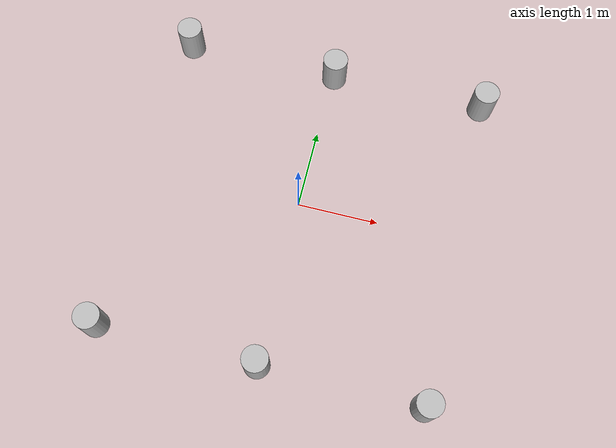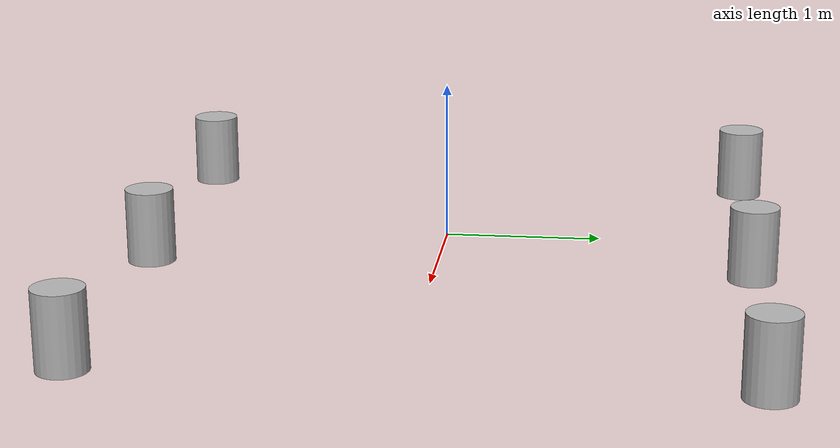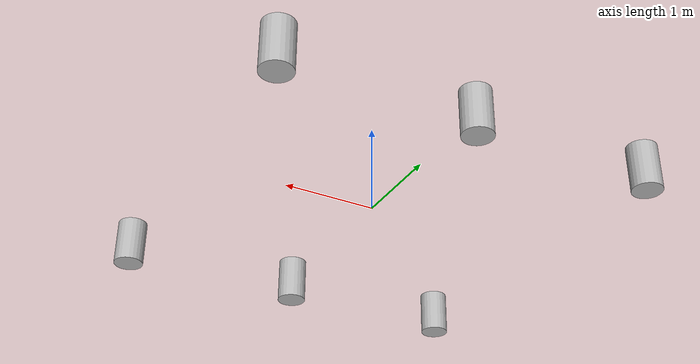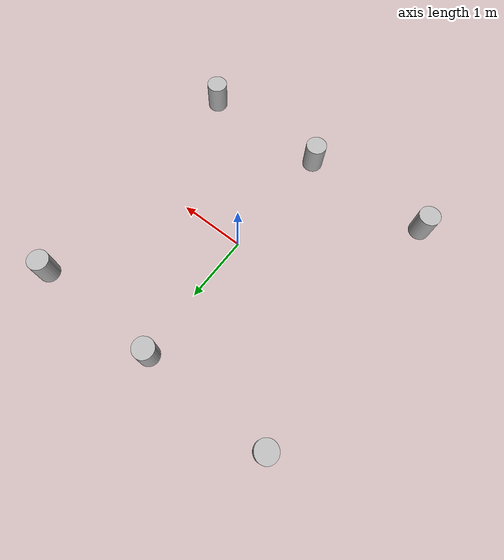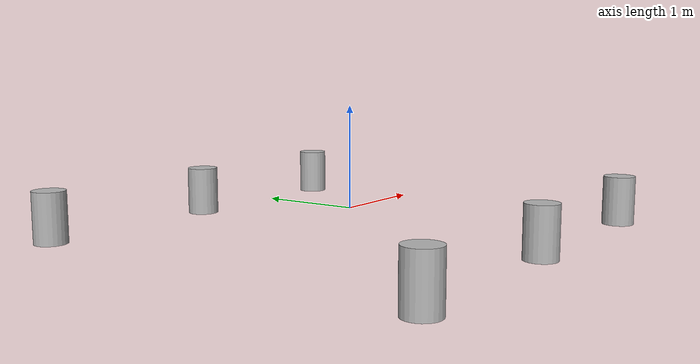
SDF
<?xml version="1.0"?>
<sdf version="1.4">
    <!-- Obstáculos dinámicos -->
    <model name="turtlebot3_drl_obstacle1">
      <include>
        <pose>2 2 0 0 0 0</pose>
        <uri>model://turtlebot3_drl_world/obstacle1</uri>
      </include>
      <plugin name="obstaclelarge1" filename="libobstacle7.so"/>
    </model>

    <model name="turtlebot3_drl_obstacle2">
      <include>
        <pose>-2 -2 0 0 0 0</pose>
        <uri>model://turtlebot3_drl_world/obstacle2</uri>
      </include>
      <plugin name="obstaclelarge2" filename="libobstacle8.so"/>
    </model>

    <model name="turtlebot3_drl_obstacle3">
      <include>
        <pose>2 -2 0 0 0 0</pose>
        <uri>model://turtlebot3_drl_world/obstacle3</uri>
      </include>
      <plugin name="obstaclelarge3" filename="libobstacle9.so"/>
    </model>

    <model name="turtlebot3_drl_obstacle4">
      <include>
        <pose>-2 2 0 0 0 0</pose>
        <uri>model://turtlebot3_drl_world/obstacle4</uri>
      </include>
      <plugin name="obstaclelarge4" filename="libobstacle10.so"/>
    </model>

    <model name="turtlebot3_drl_obstacle5">
      <include>
        <pose>0 -2 0 0 0 0</pose>
        <uri>model://turtlebot3_drl_world/obstacle5</uri>
      </include>
      <plugin name="obstaclelarge5" filename="libobstacle11.so"/>
    </model>

    <model name="turtlebot3_drl_obstacle6">
      <include>
        <pose>0 2 0 0 0 0</pose>
        <uri>model://turtlebot3_drl_world/obstacle6</uri>
      </include>
      <plugin name="obstaclelarge6" filename="libobstacle12.so"/>
    </model>
</sdf>

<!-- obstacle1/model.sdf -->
<sdf version='1.6'>
    <model name="obstacle1">
  <plugin name="obstacle_mover" filename="/home/amit_kumar/drl_nav_ws/src/turtlebot3_drlnav/src/turtlebot3_simulations/turtlebot3_gazebo/models/turtlebot3_drl_world/obstacle_plugin/lib/libobstacles.so"/>
      <link name="link_obstacle1">
        <collision name="collision">
          <geometry>
            <cylinder>
              <radius>0.16</radius>
              <length>0.50</length>
            </cylinder>
          </geometry>
        </collision>

        <visual name="visual">
          <geometry>
            <cylinder>
              <radius>0.16</radius>
              <length>0.50</length>
            </cylinder>
          </geometry>
        </visual>
      </link>
      <plugin name="p3d_base_controller_obstacle1" filename="libgazebo_ros_p3d.so">
        <ros>
          <namespace>/obstacle</namespace>
          <remapping>odom:=odom</remapping>
        </ros>
        <always_on>true</always_on>
        <update_rate>50.0</update_rate>
        <body_name>link_obstacle1</body_name>
        <topic_name>odom_obs</topic_name>
        <gaussian_noise>0.0</gaussian_noise>
        <frame_name>world</frame_name>
        <xyz_offset>0 0 0</xyz_offset>
        <rpy_offset>0 0 0</rpy_offset>
      </plugin>
    </model>
</sdf>

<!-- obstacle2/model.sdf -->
<sdf version='1.6'>
    <model name="obstacle2">
  <plugin name="obstacle_mover" filename="/home/amit_kumar/drl_nav_ws/src/turtlebot3_drlnav/src/turtlebot3_simulations/turtlebot3_gazebo/models/turtlebot3_drl_world/obstacle_plugin/lib/libobstacles.so"/>
      <link name="link_obstacle2">
        <collision name="collision">
          <geometry>
            <cylinder>
              <radius>0.16</radius>
              <length>0.50</length>
            </cylinder>
          </geometry>
        </collision>

        <visual name="visual">
          <geometry>
            <cylinder>
              <radius>0.16</radius>
              <length>0.50</length>
            </cylinder>
          </geometry>
        </visual>
      </link>
      <plugin name="p3d_base_controller_obstacle2" filename="libgazebo_ros_p3d.so">
        <ros>
          <namespace>/obstacle</namespace>
          <remapping>odom:=odom</remapping>
        </ros>
        <always_on>true</always_on>
        <update_rate>50.0</update_rate>
        <body_name>link_obstacle2</body_name>
        <topic_name>odom_obs</topic_name>
        <gaussian_noise>0.0</gaussian_noise>
        <frame_name>world</frame_name>
        <xyz_offset>0 0 0</xyz_offset>
        <rpy_offset>0 0 0</rpy_offset>
      </plugin>
    </model>
</sdf>

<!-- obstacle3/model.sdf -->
<sdf version='1.6'>
    <model name="obstacle3">
  <plugin name="obstacle_mover" filename="/home/amit_kumar/drl_nav_ws/src/turtlebot3_drlnav/src/turtlebot3_simulations/turtlebot3_gazebo/models/turtlebot3_drl_world/obstacle_plugin/lib/libobstacles.so"/>
      <link name="link_obstacle3">
        <collision name="collision">
          <geometry>
            <cylinder>
              <radius>0.16</radius>
              <length>0.50</length>
            </cylinder>
          </geometry>
        </collision>

        <visual name="visual">
          <geometry>
            <cylinder>
              <radius>0.16</radius>
              <length>0.50</length>
            </cylinder>
          </geometry>
        </visual>
      </link>
      <plugin name="p3d_base_controller_obstacle3" filename="libgazebo_ros_p3d.so">
        <ros>
          <namespace>/obstacle</namespace>
          <remapping>odom:=odom</remapping>
        </ros>
        <always_on>true</always_on>
        <update_rate>50.0</update_rate>
        <body_name>link_obstacle3</body_name>
        <topic_name>odom_obs</topic_name>
        <gaussian_noise>0.0</gaussian_noise>
        <frame_name>world</frame_name>
        <xyz_offset>0 0 0</xyz_offset>
        <rpy_offset>0 0 0</rpy_offset>
      </plugin>
    </model>
</sdf>

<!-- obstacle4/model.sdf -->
<sdf version='1.6'>
    <model name="obstacle4">
  <plugin name="obstacle_mover" filename="/home/amit_kumar/drl_nav_ws/src/turtlebot3_drlnav/src/turtlebot3_simulations/turtlebot3_gazebo/models/turtlebot3_drl_world/obstacle_plugin/lib/libobstacles.so"/>
      <link name="link_obstacle4">
        <collision name="collision">
          <geometry>
            <cylinder>
              <radius>0.16</radius>
              <length>0.50</length>
            </cylinder>
          </geometry>
        </collision>

        <visual name="visual">
          <geometry>
            <cylinder>
              <radius>0.16</radius>
              <length>0.50</length>
            </cylinder>
          </geometry>
        </visual>
      </link>
      <plugin name="p3d_base_controller_obstacle4" filename="libgazebo_ros_p3d.so">
        <ros>
          <namespace>/obstacle</namespace>
          <remapping>odom:=odom</remapping>
        </ros>
        <always_on>true</always_on>
        <update_rate>50.0</update_rate>
        <body_name>link_obstacle4</body_name>
        <topic_name>odom_obs</topic_name>
        <gaussian_noise>0.0</gaussian_noise>
        <frame_name>world</frame_name>
        <xyz_offset>0 0 0</xyz_offset>
        <rpy_offset>0 0 0</rpy_offset>
      </plugin>
    </model>
</sdf>

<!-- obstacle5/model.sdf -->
<sdf version='1.6'>
    <model name="obstacle5">
  <plugin name="obstacle_mover" filename="/home/amit_kumar/drl_nav_ws/src/turtlebot3_drlnav/src/turtlebot3_simulations/turtlebot3_gazebo/models/turtlebot3_drl_world/obstacle_plugin/lib/libobstacles.so"/>
      <link name="link_obstacle5">
        <collision name="collision">
          <geometry>
            <cylinder>
              <radius>0.16</radius>
              <length>0.50</length>
            </cylinder>
          </geometry>
        </collision>

        <visual name="visual">
          <geometry>
            <cylinder>
              <radius>0.16</radius>
              <length>0.50</length>
            </cylinder>
          </geometry>
        </visual>
      </link>
      <plugin name="p3d_base_controller_obstacle5" filename="libgazebo_ros_p3d.so">
        <ros>
          <namespace>/obstacle</namespace>
          <remapping>odom:=odom</remapping>
        </ros>
        <always_on>true</always_on>
        <update_rate>50.0</update_rate>
        <body_name>link_obstacle5</body_name>
        <topic_name>odom_obs</topic_name>
        <gaussian_noise>0.0</gaussian_noise>
        <frame_name>world</frame_name>
        <xyz_offset>0 0 0</xyz_offset>
        <rpy_offset>0 0 0</rpy_offset>
      </plugin>
    </model>
</sdf>

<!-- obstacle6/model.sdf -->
<sdf version='1.6'>
    <model name="obstacle6">
  <plugin name="obstacle_mover" filename="/home/amit_kumar/drl_nav_ws/src/turtlebot3_drlnav/src/turtlebot3_simulations/turtlebot3_gazebo/models/turtlebot3_drl_world/obstacle_plugin/lib/libobstacles.so"/>
      <link name="link_obstacle6">
        <collision name="collision">
          <geometry>
            <cylinder>
              <radius>0.16</radius>
              <length>0.50</length>
            </cylinder>
          </geometry>
        </collision>

        <visual name="visual">
          <geometry>
            <cylinder>
              <radius>0.16</radius>
              <length>0.50</length>
            </cylinder>
          </geometry>
        </visual>
      </link>
      <plugin name="p3d_base_controller_obstacle6" filename="libgazebo_ros_p3d.so">
        <ros>
          <namespace>/obstacle</namespace>
          <remapping>odom:=odom</remapping>
        </ros>
        <always_on>true</always_on>
        <update_rate>50.0</update_rate>
        <body_name>link_obstacle6</body_name>
        <topic_name>odom_obs</topic_name>
        <gaussian_noise>0.0</gaussian_noise>
        <frame_name>world</frame_name>
        <xyz_offset>0 0 0</xyz_offset>
        <rpy_offset>0 0 0</rpy_offset>
      </plugin>
    </model>
</sdf>
